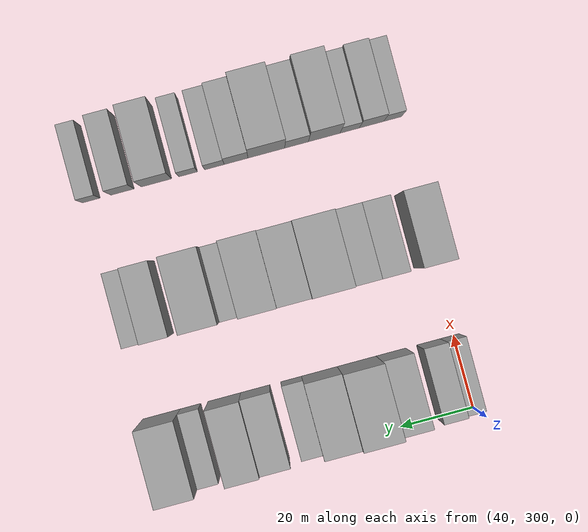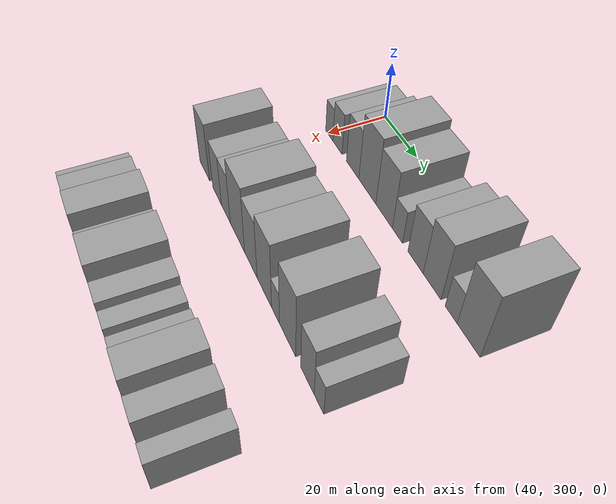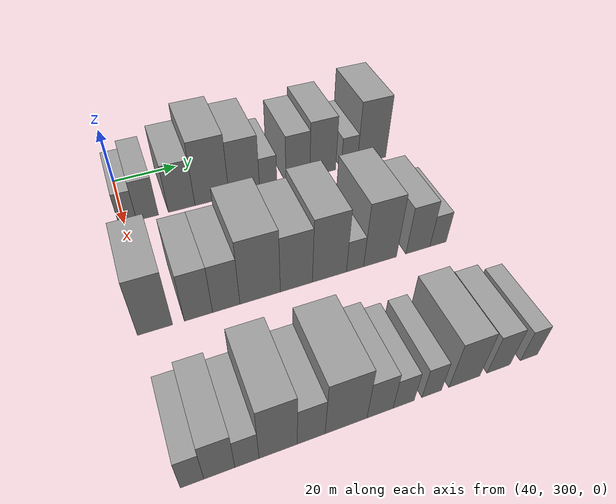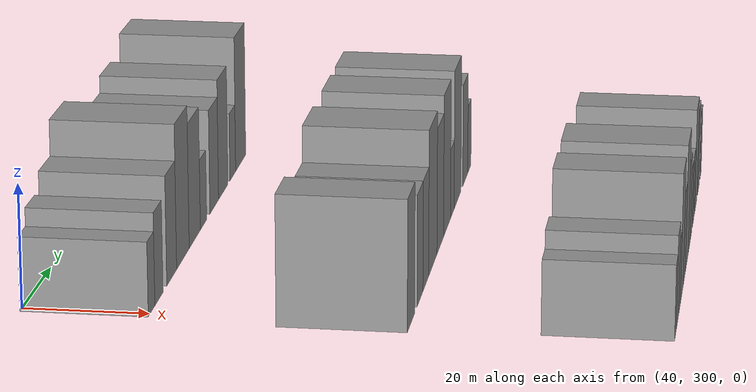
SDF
<sdf version="1.6">
 <world name="default">
  <model name="building_76">
   <static>1</static>
   <pose>50.0000 301.0899 0 0.000000 0.000000 0.000000</pose>
   <link name="link">
    <pose>0 0 6.00 0 0 0</pose>
    <collision name="collision"><geometry><box><size>20.0000 5.2107 12.0000</size></box></geometry></collision>
    <visual name="visual">
     <cast_shadows>0</cast_shadows>
     <geometry><box><size>20.0000 5.2107 12.0000</size></box></geometry>
     <material>
      <script>
       <uri>model://grey_wall/materials/scripts</uri>
       <uri>model://grey_wall/materials/textures</uri>
       <name>vrc/grey_wall</name>
      </script>
     </material>
    </visual>
   </link>
  </model>
  <model name="building_77">
   <static>1</static>
   <pose>50.0000 306.9525 0 0.000000 0.000000 0.000000</pose>
   <link name="link">
    <pose>0 0 7.50 0 0 0</pose>
    <collision name="collision"><geometry><box><size>20.0000 6.5145 15.0000</size></box></geometry></collision>
    <visual name="visual">
     <cast_shadows>0</cast_shadows>
     <geometry><box><size>20.0000 6.5145 15.0000</size></box></geometry>
     <material>
      <script>
       <uri>model://grey_wall/materials/scripts</uri>
       <uri>model://grey_wall/materials/textures</uri>
       <name>vrc/grey_wall</name>
      </script>
     </material>
    </visual>
   </link>
  </model>
  <model name="building_78">
   <static>1</static>
   <pose>50.0000 317.3073 0 0.000000 0.000000 0.000000</pose>
   <link name="link">
    <pose>0 0 9.00 0 0 0</pose>
    <collision name="collision"><geometry><box><size>20.0000 8.1949 18.0000</size></box></geometry></collision>
    <visual name="visual">
     <cast_shadows>0</cast_shadows>
     <geometry><box><size>20.0000 8.1949 18.0000</size></box></geometry>
     <material>
      <script>
       <uri>model://grey_wall/materials/scripts</uri>
       <uri>model://grey_wall/materials/textures</uri>
       <name>vrc/grey_wall</name>
      </script>
     </material>
    </visual>
   </link>
  </model>
  <model name="building_79">
   <static>1</static>
   <pose>50.0000 326.7852 0 0.000000 0.000000 0.000000</pose>
   <link name="link">
    <pose>0 0 12.00 0 0 0</pose>
    <collision name="collision"><geometry><box><size>20.0000 10.7609 24.0000</size></box></geometry></collision>
    <visual name="visual">
     <cast_shadows>0</cast_shadows>
     <geometry><box><size>20.0000 10.7609 24.0000</size></box></geometry>
     <material>
      <script>
       <uri>model://grey_wall/materials/scripts</uri>
       <uri>model://grey_wall/materials/textures</uri>
       <name>vrc/grey_wall</name>
      </script>
     </material>
    </visual>
   </link>
  </model>
  <model name="building_80">
   <static>1</static>
   <pose>50.0000 337.1063 0 0.000000 0.000000 0.000000</pose>
   <link name="link">
    <pose>0 0 10.50 0 0 0</pose>
    <collision name="collision"><geometry><box><size>20.0000 9.8814 21.0000</size></box></geometry></collision>
    <visual name="visual">
     <cast_shadows>0</cast_shadows>
     <geometry><box><size>20.0000 9.8814 21.0000</size></box></geometry>
     <material>
      <script>
       <uri>model://grey_wall/materials/scripts</uri>
       <uri>model://grey_wall/materials/textures</uri>
       <name>vrc/grey_wall</name>
      </script>
     </material>
    </visual>
   </link>
  </model>
  <model name="building_81">
   <static>1</static>
   <pose>50.0000 344.9108 0 0.000000 0.000000 0.000000</pose>
   <link name="link">
    <pose>0 0 6.00 0 0 0</pose>
    <collision name="collision"><geometry><box><size>20.0000 5.7277 12.0000</size></box></geometry></collision>
    <visual name="visual">
     <cast_shadows>0</cast_shadows>
     <geometry><box><size>20.0000 5.7277 12.0000</size></box></geometry>
     <material>
      <script>
       <uri>model://grey_wall/materials/scripts</uri>
       <uri>model://grey_wall/materials/textures</uri>
       <name>vrc/grey_wall</name>
      </script>
     </material>
    </visual>
   </link>
  </model>
  <model name="building_82">
   <static>1</static>
   <pose>50.0000 354.8287 0 0.000000 0.000000 0.000000</pose>
   <link name="link">
    <pose>0 0 9.00 0 0 0</pose>
    <collision name="collision"><geometry><box><size>20.0000 8.1081 18.0000</size></box></geometry></collision>
    <visual name="visual">
     <cast_shadows>0</cast_shadows>
     <geometry><box><size>20.0000 8.1081 18.0000</size></box></geometry>
     <material>
      <script>
       <uri>model://grey_wall/materials/scripts</uri>
       <uri>model://grey_wall/materials/textures</uri>
       <name>vrc/grey_wall</name>
      </script>
     </material>
    </visual>
   </link>
  </model>
  <model name="building_83">
   <static>1</static>
   <pose>50.0000 363.3851 0 0.000000 0.000000 0.000000</pose>
   <link name="link">
    <pose>0 0 10.50 0 0 0</pose>
    <collision name="collision"><geometry><box><size>20.0000 9.0046 21.0000</size></box></geometry></collision>
    <visual name="visual">
     <cast_shadows>0</cast_shadows>
     <geometry><box><size>20.0000 9.0046 21.0000</size></box></geometry>
     <material>
      <script>
       <uri>model://grey_wall/materials/scripts</uri>
       <uri>model://grey_wall/materials/textures</uri>
       <name>vrc/grey_wall</name>
      </script>
     </material>
    </visual>
   </link>
  </model>
  <model name="building_84">
   <static>1</static>
   <pose>50.0000 372.7267 0 0.000000 0.000000 0.000000</pose>
   <link name="link">
    <pose>0 0 6.00 0 0 0</pose>
    <collision name="collision"><geometry><box><size>20.0000 5.6787 12.0000</size></box></geometry></collision>
    <visual name="visual">
     <cast_shadows>0</cast_shadows>
     <geometry><box><size>20.0000 5.6787 12.0000</size></box></geometry>
     <material>
      <script>
       <uri>model://grey_wall/materials/scripts</uri>
       <uri>model://grey_wall/materials/textures</uri>
       <name>vrc/grey_wall</name>
      </script>
     </material>
    </visual>
   </link>
  </model>
  <model name="building_85">
   <static>1</static>
   <pose>50.0000 380.7363 0 0.000000 0.000000 0.000000</pose>
   <link name="link">
    <pose>0 0 12.00 0 0 0</pose>
    <collision name="collision"><geometry><box><size>20.0000 10.3403 24.0000</size></box></geometry></collision>
    <visual name="visual">
     <cast_shadows>0</cast_shadows>
     <geometry><box><size>20.0000 10.3403 24.0000</size></box></geometry>
     <material>
      <script>
       <uri>model://grey_wall/materials/scripts</uri>
       <uri>model://grey_wall/materials/textures</uri>
       <name>vrc/grey_wall</name>
      </script>
     </material>
    </visual>
   </link>
  </model>
  <model name="building_160">
   <static>1</static>
   <pose>90.0000 301.0694 0 0.000000 0.000000 0.000000</pose>
   <link name="link">
    <pose>0 0 10.50 0 0 0</pose>
    <collision name="collision"><geometry><box><size>20.0000 8.9117 21.0000</size></box></geometry></collision>
    <visual name="visual">
     <cast_shadows>0</cast_shadows>
     <geometry><box><size>20.0000 8.9117 21.0000</size></box></geometry>
     <material>
      <script>
       <uri>model://grey_wall/materials/scripts</uri>
       <uri>model://grey_wall/materials/textures</uri>
       <name>vrc/grey_wall</name>
      </script>
     </material>
    </visual>
   </link>
  </model>
  <model name="building_161">
   <static>1</static>
   <pose>90.0000 312.2325 0 0.000000 0.000000 0.000000</pose>
   <link name="link">
    <pose>0 0 9.00 0 0 0</pose>
    <collision name="collision"><geometry><box><size>20.0000 7.4145 18.0000</size></box></geometry></collision>
    <visual name="visual">
     <cast_shadows>0</cast_shadows>
     <geometry><box><size>20.0000 7.4145 18.0000</size></box></geometry>
     <material>
      <script>
       <uri>model://grey_wall/materials/scripts</uri>
       <uri>model://grey_wall/materials/textures</uri>
       <name>vrc/grey_wall</name>
      </script>
     </material>
    </visual>
   </link>
  </model>
  <model name="building_162">
   <static>1</static>
   <pose>90.0000 319.6227 0 0.000000 0.000000 0.000000</pose>
   <link name="link">
    <pose>0 0 9.00 0 0 0</pose>
    <collision name="collision"><geometry><box><size>20.0000 7.3660 18.0000</size></box></geometry></collision>
    <visual name="visual">
     <cast_shadows>0</cast_shadows>
     <geometry><box><size>20.0000 7.3660 18.0000</size></box></geometry>
     <material>
      <script>
       <uri>model://grey_wall/materials/scripts</uri>
       <uri>model://grey_wall/materials/textures</uri>
       <name>vrc/grey_wall</name>
      </script>
     </material>
    </visual>
   </link>
  </model>
  <model name="building_163">
   <static>1</static>
   <pose>90.0000 328.8922 0 0.000000 0.000000 0.000000</pose>
   <link name="link">
    <pose>0 0 12.00 0 0 0</pose>
    <collision name="collision"><geometry><box><size>20.0000 11.1730 24.0000</size></box></geometry></collision>
    <visual name="visual">
     <cast_shadows>0</cast_shadows>
     <geometry><box><size>20.0000 11.1730 24.0000</size></box></geometry>
     <material>
      <script>
       <uri>model://grey_wall/materials/scripts</uri>
       <uri>model://grey_wall/materials/textures</uri>
       <name>vrc/grey_wall</name>
      </script>
     </material>
    </visual>
   </link>
  </model>
  <model name="building_164">
   <static>1</static>
   <pose>90.0000 339.0551 0 0.000000 0.000000 0.000000</pose>
   <link name="link">
    <pose>0 0 10.50 0 0 0</pose>
    <collision name="collision"><geometry><box><size>20.0000 9.1526 21.0000</size></box></geometry></collision>
    <visual name="visual">
     <cast_shadows>0</cast_shadows>
     <geometry><box><size>20.0000 9.1526 21.0000</size></box></geometry>
     <material>
      <script>
       <uri>model://grey_wall/materials/scripts</uri>
       <uri>model://grey_wall/materials/textures</uri>
       <name>vrc/grey_wall</name>
      </script>
     </material>
    </visual>
   </link>
  </model>
  <model name="building_165">
   <static>1</static>
   <pose>90.0000 348.6371 0 0.000000 0.000000 0.000000</pose>
   <link name="link">
    <pose>0 0 12.00 0 0 0</pose>
    <collision name="collision"><geometry><box><size>20.0000 10.0115 24.0000</size></box></geometry></collision>
    <visual name="visual">
     <cast_shadows>0</cast_shadows>
     <geometry><box><size>20.0000 10.0115 24.0000</size></box></geometry>
     <material>
      <script>
       <uri>model://grey_wall/materials/scripts</uri>
       <uri>model://grey_wall/materials/textures</uri>
       <name>vrc/grey_wall</name>
      </script>
     </material>
    </visual>
   </link>
  </model>
  <model name="building_166">
   <static>1</static>
   <pose>90.0000 356.2366 0 0.000000 0.000000 0.000000</pose>
   <link name="link">
    <pose>0 0 6.00 0 0 0</pose>
    <collision name="collision"><geometry><box><size>20.0000 5.1875 12.0000</size></box></geometry></collision>
    <visual name="visual">
     <cast_shadows>0</cast_shadows>
     <geometry><box><size>20.0000 5.1875 12.0000</size></box></geometry>
     <material>
      <script>
       <uri>model://grey_wall/materials/scripts</uri>
       <uri>model://grey_wall/materials/textures</uri>
       <name>vrc/grey_wall</name>
      </script>
     </material>
    </visual>
   </link>
  </model>
  <model name="building_167">
   <static>1</static>
   <pose>90.0000 363.9018 0 0.000000 0.000000 0.000000</pose>
   <link name="link">
    <pose>0 0 12.00 0 0 0</pose>
    <collision name="collision"><geometry><box><size>20.0000 10.1429 24.0000</size></box></geometry></collision>
    <visual name="visual">
     <cast_shadows>0</cast_shadows>
     <geometry><box><size>20.0000 10.1429 24.0000</size></box></geometry>
     <material>
      <script>
       <uri>model://grey_wall/materials/scripts</uri>
       <uri>model://grey_wall/materials/textures</uri>
       <name>vrc/grey_wall</name>
      </script>
     </material>
    </visual>
   </link>
  </model>
  <model name="building_168">
   <static>1</static>
   <pose>90.0000 375.8147 0 0.000000 0.000000 0.000000</pose>
   <link name="link">
    <pose>0 0 9.00 0 0 0</pose>
    <collision name="collision"><geometry><box><size>20.0000 7.6829 18.0000</size></box></geometry></collision>
    <visual name="visual">
     <cast_shadows>0</cast_shadows>
     <geometry><box><size>20.0000 7.6829 18.0000</size></box></geometry>
     <material>
      <script>
       <uri>model://grey_wall/materials/scripts</uri>
       <uri>model://grey_wall/materials/textures</uri>
       <name>vrc/grey_wall</name>
      </script>
     </material>
    </visual>
   </link>
  </model>
  <model name="building_169">
   <static>1</static>
   <pose>90.0000 382.2963 0 0.000000 0.000000 0.000000</pose>
   <link name="link">
    <pose>0 0 6.00 0 0 0</pose>
    <collision name="collision"><geometry><box><size>20.0000 5.2803 12.0000</size></box></geometry></collision>
    <visual name="visual">
     <cast_shadows>0</cast_shadows>
     <geometry><box><size>20.0000 5.2803 12.0000</size></box></geometry>
     <material>
      <script>
       <uri>model://grey_wall/materials/scripts</uri>
       <uri>model://grey_wall/materials/textures</uri>
       <name>vrc/grey_wall</name>
      </script>
     </material>
    </visual>
   </link>
  </model>
  <model name="building_242">
   <static>1</static>
   <pose>130.0000 300.6175 0 0.000000 0.000000 0.000000</pose>
   <link name="link">
    <pose>0 0 6.00 0 0 0</pose>
    <collision name="collision"><geometry><box><size>20.0000 4.9892 12.0000</size></box></geometry></collision>
    <visual name="visual">
     <cast_shadows>0</cast_shadows>
     <geometry><box><size>20.0000 4.9892 12.0000</size></box></geometry>
     <material>
      <script>
       <uri>model://grey_wall/materials/scripts</uri>
       <uri>model://grey_wall/materials/textures</uri>
       <name>vrc/grey_wall</name>
      </script>
     </material>
    </visual>
   </link>
  </model>
  <model name="building_243">
   <static>1</static>
   <pose>130.0000 306.4812 0 0.000000 0.000000 0.000000</pose>
   <link name="link">
    <pose>0 0 7.50 0 0 0</pose>
    <collision name="collision"><geometry><box><size>20.0000 6.7381 15.0000</size></box></geometry></collision>
    <visual name="visual">
     <cast_shadows>0</cast_shadows>
     <geometry><box><size>20.0000 6.7381 15.0000</size></box></geometry>
     <material>
      <script>
       <uri>model://grey_wall/materials/scripts</uri>
       <uri>model://grey_wall/materials/textures</uri>
       <name>vrc/grey_wall</name>
      </script>
     </material>
    </visual>
   </link>
  </model>
  <model name="building_244">
   <static>1</static>
   <pose>130.0000 312.5304 0 0.000000 0.000000 0.000000</pose>
   <link name="link">
    <pose>0 0 6.00 0 0 0</pose>
    <collision name="collision"><geometry><box><size>20.0000 5.3604 12.0000</size></box></geometry></collision>
    <visual name="visual">
     <cast_shadows>0</cast_shadows>
     <geometry><box><size>20.0000 5.3604 12.0000</size></box></geometry>
     <material>
      <script>
       <uri>model://grey_wall/materials/scripts</uri>
       <uri>model://grey_wall/materials/textures</uri>
       <name>vrc/grey_wall</name>
      </script>
     </material>
    </visual>
   </link>
  </model>
  <model name="building_245">
   <static>1</static>
   <pose>130.0000 319.5748 0 0.000000 0.000000 0.000000</pose>
   <link name="link">
    <pose>0 0 10.50 0 0 0</pose>
    <collision name="collision"><geometry><box><size>20.0000 8.7284 21.0000</size></box></geometry></collision>
    <visual name="visual">
     <cast_shadows>0</cast_shadows>
     <geometry><box><size>20.0000 8.7284 21.0000</size></box></geometry>
     <material>
      <script>
       <uri>model://grey_wall/materials/scripts</uri>
       <uri>model://grey_wall/materials/textures</uri>
       <name>vrc/grey_wall</name>
      </script>
     </material>
    </visual>
   </link>
  </model>
  <model name="building_246">
   <static>1</static>
   <pose>130.0000 327.2056 0 0.000000 0.000000 0.000000</pose>
   <link name="link">
    <pose>0 0 7.50 0 0 0</pose>
    <collision name="collision"><geometry><box><size>20.0000 6.5332 15.0000</size></box></geometry></collision>
    <visual name="visual">
     <cast_shadows>0</cast_shadows>
     <geometry><box><size>20.0000 6.5332 15.0000</size></box></geometry>
     <material>
      <script>
       <uri>model://grey_wall/materials/scripts</uri>
       <uri>model://grey_wall/materials/textures</uri>
       <name>vrc/grey_wall</name>
      </script>
     </material>
    </visual>
   </link>
  </model>
  <model name="building_247">
   <static>1</static>
   <pose>130.0000 335.5440 0 0.000000 0.000000 0.000000</pose>
   <link name="link">
    <pose>0 0 10.50 0 0 0</pose>
    <collision name="collision"><geometry><box><size>20.0000 10.1436 21.0000</size></box></geometry></collision>
    <visual name="visual">
     <cast_shadows>0</cast_shadows>
     <geometry><box><size>20.0000 10.1436 21.0000</size></box></geometry>
     <material>
      <script>
       <uri>model://grey_wall/materials/scripts</uri>
       <uri>model://grey_wall/materials/textures</uri>
       <name>vrc/grey_wall</name>
      </script>
     </material>
    </visual>
   </link>
  </model>
  <model name="building_248">
   <static>1</static>
   <pose>130.0000 343.8867 0 0.000000 0.000000 0.000000</pose>
   <link name="link">
    <pose>0 0 7.50 0 0 0</pose>
    <collision name="collision"><geometry><box><size>20.0000 6.5417 15.0000</size></box></geometry></collision>
    <visual name="visual">
     <cast_shadows>0</cast_shadows>
     <geometry><box><size>20.0000 6.5417 15.0000</size></box></geometry>
     <material>
      <script>
       <uri>model://grey_wall/materials/scripts</uri>
       <uri>model://grey_wall/materials/textures</uri>
       <name>vrc/grey_wall</name>
      </script>
     </material>
    </visual>
   </link>
  </model>
  <model name="building_249">
   <static>1</static>
   <pose>130.0000 349.8684 0 0.000000 0.000000 0.000000</pose>
   <link name="link">
    <pose>0 0 6.00 0 0 0</pose>
    <collision name="collision"><geometry><box><size>20.0000 5.4217 12.0000</size></box></geometry></collision>
    <visual name="visual">
     <cast_shadows>0</cast_shadows>
     <geometry><box><size>20.0000 5.4217 12.0000</size></box></geometry>
     <material>
      <script>
       <uri>model://grey_wall/materials/scripts</uri>
       <uri>model://grey_wall/materials/textures</uri>
       <name>vrc/grey_wall</name>
      </script>
     </material>
    </visual>
   </link>
  </model>
  <model name="building_250">
   <static>1</static>
   <pose>130.0000 357.1449 0 0.000000 0.000000 0.000000</pose>
   <link name="link">
    <pose>0 0 6.00 0 0 0</pose>
    <collision name="collision"><geometry><box><size>20.0000 5.1313 12.0000</size></box></geometry></collision>
    <visual name="visual">
     <cast_shadows>0</cast_shadows>
     <geometry><box><size>20.0000 5.1313 12.0000</size></box></geometry>
     <material>
      <script>
       <uri>model://grey_wall/materials/scripts</uri>
       <uri>model://grey_wall/materials/textures</uri>
       <name>vrc/grey_wall</name>
      </script>
     </material>
    </visual>
   </link>
  </model>
  <model name="building_251">
   <static>1</static>
   <pose>130.0000 365.9073 0 0.000000 0.000000 0.000000</pose>
   <link name="link">
    <pose>0 0 9.00 0 0 0</pose>
    <collision name="collision"><geometry><box><size>20.0000 8.3935 18.0000</size></box></geometry></collision>
    <visual name="visual">
     <cast_shadows>0</cast_shadows>
     <geometry><box><size>20.0000 8.3935 18.0000</size></box></geometry>
     <material>
      <script>
       <uri>model://grey_wall/materials/scripts</uri>
       <uri>model://grey_wall/materials/textures</uri>
       <name>vrc/grey_wall</name>
      </script>
     </material>
    </visual>
   </link>
  </model>
  <model name="building_252">
   <static>1</static>
   <pose>130.0000 375.3130 0 0.000000 0.000000 0.000000</pose>
   <link name="link">
    <pose>0 0 7.50 0 0 0</pose>
    <collision name="collision"><geometry><box><size>20.0000 6.4180 15.0000</size></box></geometry></collision>
    <visual name="visual">
     <cast_shadows>0</cast_shadows>
     <geometry><box><size>20.0000 6.4180 15.0000</size></box></geometry>
     <material>
      <script>
       <uri>model://grey_wall/materials/scripts</uri>
       <uri>model://grey_wall/materials/textures</uri>
       <name>vrc/grey_wall</name>
      </script>
     </material>
    </visual>
   </link>
  </model>
  <model name="building_253">
   <static>1</static>
   <pose>130.0000 383.9680 0 0.000000 0.000000 0.000000</pose>
   <link name="link">
    <pose>0 0 6.00 0 0 0</pose>
    <collision name="collision"><geometry><box><size>20.0000 4.8921 12.0000</size></box></geometry></collision>
    <visual name="visual">
     <cast_shadows>0</cast_shadows>
     <geometry><box><size>20.0000 4.8921 12.0000</size></box></geometry>
     <material>
      <script>
       <uri>model://grey_wall/materials/scripts</uri>
       <uri>model://grey_wall/materials/textures</uri>
       <name>vrc/grey_wall</name>
      </script>
     </material>
    </visual>
   </link>
  </model>
 </world>
</sdf>
